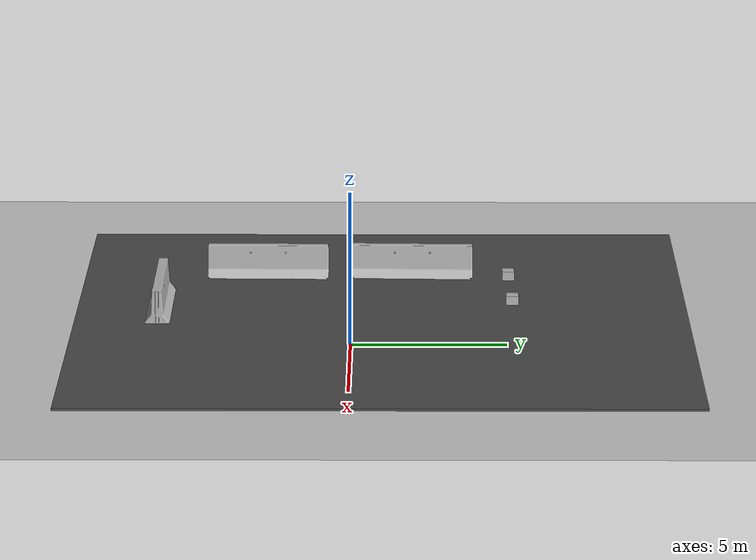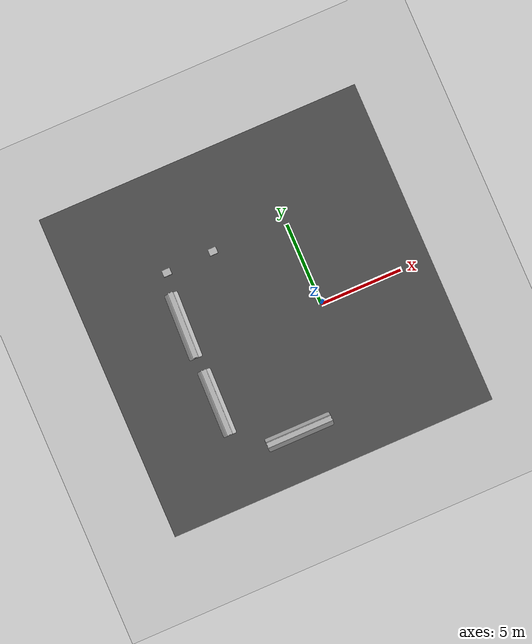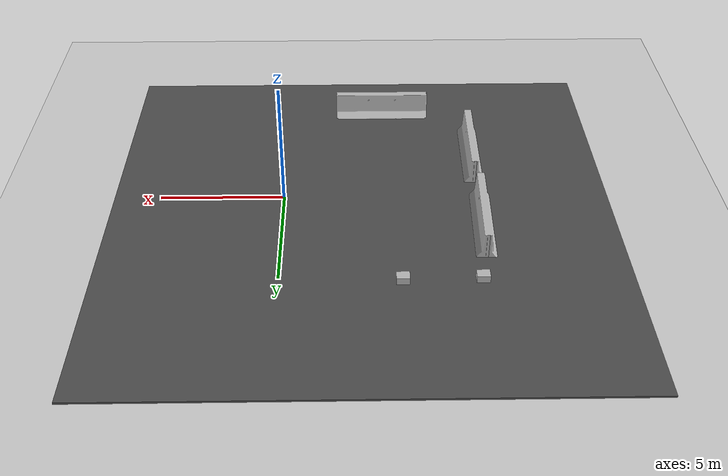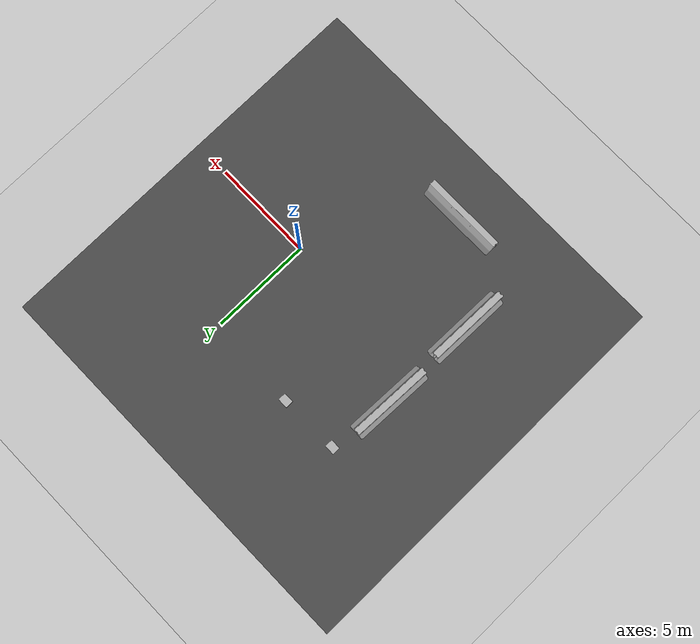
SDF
<sdf version="1.7">
 <world name="default">
  <model name="ground_plane">
   <static>1</static>
   <link name="link">
    <collision name="collision">
     <geometry><plane><normal>0 0 1</normal><size>100 100</size></plane></geometry>
     <surface>
      <contact><collide_bitmask>65535</collide_bitmask></contact>
      <friction><ode><mu>100</mu><mu2>50</mu2></ode></friction>
     </surface>
    </collision>
    <visual name="visual">
     <cast_shadows>0</cast_shadows>
     <geometry><plane><normal>0 0 1</normal><size>100 100</size></plane></geometry>
     <material>
      <script><uri>file://media/materials/scripts/gazebo.material</uri><name>Gazebo/Grey</name></script>
     </material>
    </visual>
   </link>
  </model>
  <model name="asphalt_plane">
   <static>1</static>
   <link name="link">
    <collision name="collision"><geometry><box><size>20 20 0.1</size></box></geometry></collision>
    <visual name="visual">
     <cast_shadows>0</cast_shadows>
     <geometry><box><size>20 20 0.1</size></box></geometry>
     <material>
      <script>
       <uri>model://asphalt_plane/materials/scripts</uri>
       <uri>model://asphalt_plane/materials/textures</uri>
       <name>vrc/asphalt</name>
      </script>
     </material>
    </visual>
   </link>
   <pose>-3.13023 0.98883 0 0 -0 0</pose>
  </model>
  <model name="cardboard_box">
   <pose>-7.5154 5.21849 0.199 0 -0 0</pose>
   <link name="link">
    <inertial>
     <mass>2</mass>
     <inertia>
      <ixx>0.0416667</ixx>
      <ixy>0</ixy>
      <ixz>0</ixz>
      <iyy>0.0566667</iyy>
      <iyz>0</iyz>
      <izz>0.0683333</izz>
     </inertia>
    </inertial>
    <collision name="collision">
     <geometry><box><size>0.5 0.4 0.3</size></box></geometry>
     <surface>
      <friction><ode><mu>1</mu><mu2>1</mu2></ode></friction>
      <contact><ode><kp>1e+07</kp><kd>1</kd><min_depth>0.001</min_depth><max_vel>0.1</max_vel></ode></contact>
     </surface>
    </collision>
    <visual name="visual">
     <pose>0 0 -0.15 0 -0 0</pose>
     <geometry>
      <mesh><uri>model://cardboard_box/meshes/cardboard_box.dae</uri><scale>1.25932 1.00745 0.755591</scale></mesh>
     </geometry>
    </visual>
   </link>
  </model>
  <model name="cardboard_box_0">
   <pose>-4.57723 5.28688 0.199 0 -0 0</pose>
   <link name="link">
    <inertial>
     <mass>2</mass>
     <inertia>
      <ixx>0.0416667</ixx>
      <ixy>0</ixy>
      <ixz>0</ixz>
      <iyy>0.0566667</iyy>
      <iyz>0</iyz>
      <izz>0.0683333</izz>
     </inertia>
    </inertial>
    <collision name="collision">
     <geometry><box><size>0.5 0.4 0.3</size></box></geometry>
     <surface>
      <friction><ode><mu>1</mu><mu2>1</mu2></ode></friction>
      <contact><ode><kp>1e+07</kp><kd>1</kd><min_depth>0.001</min_depth><max_vel>0.1</max_vel></ode></contact>
     </surface>
    </collision>
    <visual name="visual">
     <pose>0 0 -0.15 0 -0 0</pose>
     <geometry>
      <mesh><uri>model://cardboard_box/meshes/cardboard_box.dae</uri><scale>1.25932 1.00745 0.755591</scale></mesh>
     </geometry>
    </visual>
   </link>
  </model>
  <model name="jersey_barrier">
   <static>1</static>
   <link name="link">
    <visual name="visual">
     <geometry><mesh><uri>model://jersey_barrier/meshes/jersey_barrier.dae</uri></mesh></geometry>
    </visual>
    <collision name="upright">
     <pose>0 0 0.5715 0 -0 0</pose>
     <geometry><box><size>4.06542 0.3063 1.143</size></box></geometry>
    </collision>
    <collision name="base">
     <pose>0 0 0.032258 0 -0 0</pose>
     <geometry><box><size>4.06542 0.8107 0.064516</size></box></geometry>
    </collision>
    <collision name="base2">
     <pose>0 0 0.1 0 -0 0</pose>
     <geometry><box><size>4.06542 0.65 0.1</size></box></geometry>
    </collision>
    <collision name="base3">
     <pose>0 0 0.2 0 -0 0</pose>
     <geometry><box><size>4.06542 0.5 0.1</size></box></geometry>
    </collision>
    <collision name="left-angle">
     <pose>0 -0.224 0.2401 0.9 -0 0</pose>
     <geometry><box><size>4.06542 0.5 0.064516</size></box></geometry>
    </collision>
    <collision name="right-angle">
     <pose>0 0.224 0.2401 -0.9 0 0</pose>
     <geometry><box><size>4.06542 0.5 0.064516</size></box></geometry>
    </collision>
   </link>
   <pose>-4.13725 -6.29572 0 0 -0 0</pose>
  </model>
  <model name="jersey_barrier_1">
   <static>1</static>
   <link name="link">
    <visual name="visual">
     <geometry><mesh><uri>model://jersey_barrier/meshes/jersey_barrier.dae</uri></mesh></geometry>
    </visual>
    <collision name="upright">
     <pose>0 0 0.5715 0 -0 0</pose>
     <geometry><box><size>4.06542 0.3063 1.143</size></box></geometry>
    </collision>
    <collision name="base">
     <pose>0 0 0.032258 0 -0 0</pose>
     <geometry><box><size>4.06542 0.8107 0.064516</size></box></geometry>
    </collision>
    <collision name="base2">
     <pose>0 0 0.1 0 -0 0</pose>
     <geometry><box><size>4.06542 0.65 0.1</size></box></geometry>
    </collision>
    <collision name="base3">
     <pose>0 0 0.2 0 -0 0</pose>
     <geometry><box><size>4.06542 0.5 0.1</size></box></geometry>
    </collision>
    <collision name="left-angle">
     <pose>0 -0.224 0.2401 0.9 -0 0</pose>
     <geometry><box><size>4.06542 0.5 0.064516</size></box></geometry>
    </collision>
    <collision name="right-angle">
     <pose>0 0.224 0.2401 -0.9 0 0</pose>
     <geometry><box><size>4.06542 0.5 0.064516</size></box></geometry>
    </collision>
   </link>
   <pose>-7.8424 -2.85387 0 0 -0 1.55378</pose>
  </model>
  <model name="jersey_barrier_4">
   <static>1</static>
   <link name="link">
    <visual name="visual">
     <geometry><mesh><uri>model://jersey_barrier/meshes/jersey_barrier.dae</uri></mesh></geometry>
    </visual>
    <collision name="upright">
     <pose>0 0 0.5715 0 -0 0</pose>
     <geometry><box><size>4.06542 0.3063 1.143</size></box></geometry>
    </collision>
    <collision name="base">
     <pose>0 0 0.032258 0 -0 0</pose>
     <geometry><box><size>4.06542 0.8107 0.064516</size></box></geometry>
    </collision>
    <collision name="base2">
     <pose>0 0 0.1 0 -0 0</pose>
     <geometry><box><size>4.06542 0.65 0.1</size></box></geometry>
    </collision>
    <collision name="base3">
     <pose>0 0 0.2 0 -0 0</pose>
     <geometry><box><size>4.06542 0.5 0.1</size></box></geometry>
    </collision>
    <collision name="left-angle">
     <pose>0 -0.224 0.2401 0.9 -0 0</pose>
     <geometry><box><size>4.06542 0.5 0.064516</size></box></geometry>
    </collision>
    <collision name="right-angle">
     <pose>0 0.224 0.2401 -0.9 0 0</pose>
     <geometry><box><size>4.06542 0.5 0.064516</size></box></geometry>
    </collision>
   </link>
   <pose>-7.86009 1.99781 0 0 -0 1.53779</pose>
  </model>
 </world>
</sdf>
